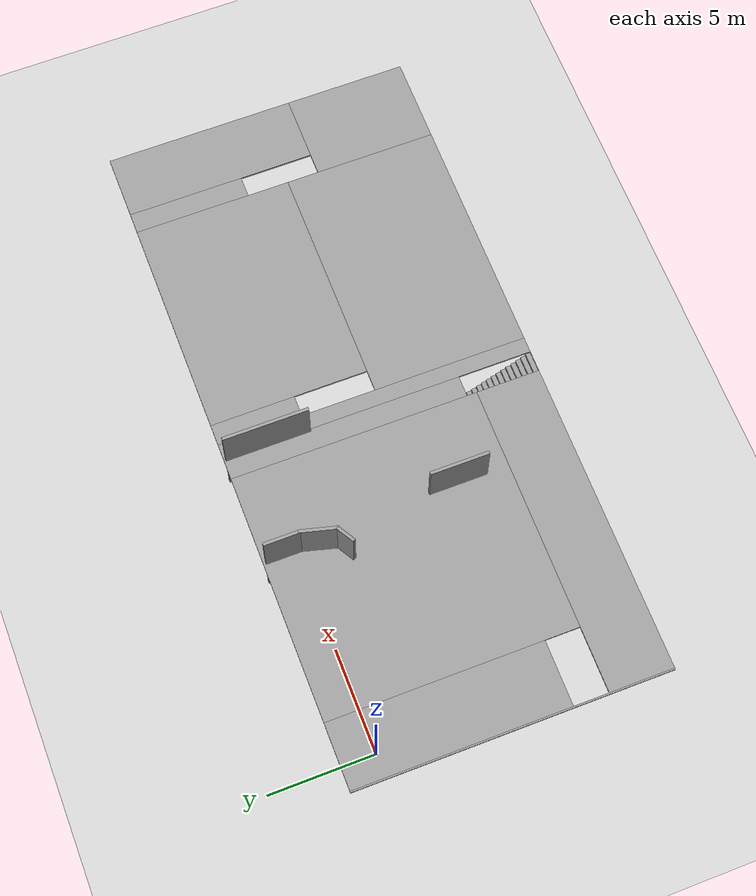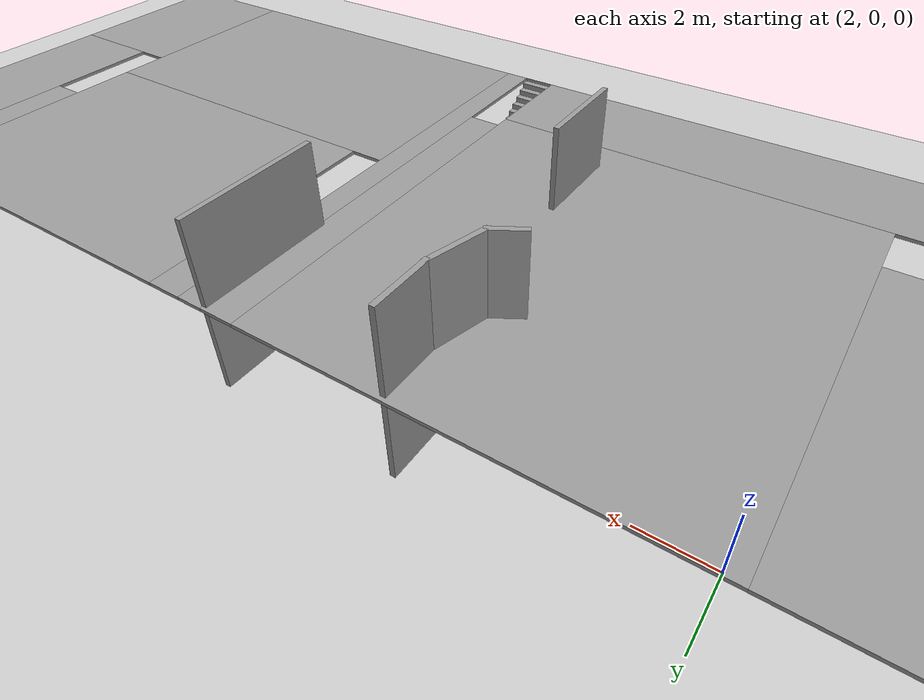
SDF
<sdf version="1.7">
 <world name="default">
  <model name="ground_plane">
   <static>1</static>
   <link name="link">
    <collision name="collision">
     <geometry><plane><normal>0 0 1</normal><size>100 100</size></plane></geometry>
     <surface><friction><ode><mu>100</mu><mu2>50</mu2></ode></friction></surface>
    </collision>
    <visual name="visual">
     <cast_shadows>0</cast_shadows>
     <geometry><plane><normal>0 0 1</normal><size>100 100</size></plane></geometry>
     <material>
      <script><uri>file://media/materials/scripts/gazebo.material</uri><name>Gazebo/Grey</name></script>
     </material>
    </visual>
   </link>
  </model>
  <model name="room_with_stairs">
   <pose>14.4299 -5.56754 0 0 -0 0</pose>
   <link name="Floor_0">
    <pose>-1e-06 0 2.5 0 -0 0</pose>
    <visual name="Floor_0_Visual_0">
     <pose>-16.1009 0 0.05 0 -0 0</pose>
     <geometry><box><size>0.075725 14.75 0.1</size></box></geometry>
     <material>
      <script><uri>file://media/materials/scripts/gazebo.material</uri><name>Gazebo/Grey</name></script>
      <ambient>1 1 1 1</ambient>
     </material>
     <meta><layer>1</layer></meta>
    </visual>
    <collision name="Floor_0_Collision_0">
     <geometry><box><size>0.075725 14.75 0.1</size></box></geometry>
     <pose>-16.1009 0 0.05 0 -0 0</pose>
    </collision>
    <visual name="Floor_0_Visual_1">
     <pose>0.183693 0 0.05 0 -0 0</pose>
     <geometry><box><size>0.743302 14.75 0.1</size></box></geometry>
     <material>
      <script><uri>file://media/materials/scripts/gazebo.material</uri><name>Gazebo/Grey</name></script>
      <ambient>1 1 1 1</ambient>
     </material>
     <meta><layer>1</layer></meta>
    </visual>
    <collision name="Floor_0_Collision_1">
     <geometry><box><size>0.743302 14.75 0.1</size></box></geometry>
     <pose>0.183693 0 0.05 0 -0 0</pose>
    </collision>
    <visual name="Floor_0_Visual_2">
     <pose>-8.62548 -5.85906 0.05 0 -0 0</pose>
     <geometry><box><size>14.875 3.03188 0.1</size></box></geometry>
     <material>
      <script><uri>file://media/materials/scripts/gazebo.material</uri><name>Gazebo/Grey</name></script>
      <ambient>1 1 1 1</ambient>
     </material>
     <meta><layer>1</layer></meta>
    </visual>
    <collision name="Floor_0_Collision_2">
     <geometry><box><size>14.875 3.03188 0.1</size></box></geometry>
     <pose>-8.62548 -5.85906 0.05 0 -0 0</pose>
    </collision>
    <visual name="Floor_0_Visual_3">
     <pose>6.30013 -3.74051 0.05 0 -0 0</pose>
     <geometry><box><size>11.4896 7.26898 0.1</size></box></geometry>
     <material>
      <script><uri>file://media/materials/scripts/gazebo.material</uri><name>Gazebo/Grey</name></script>
      <ambient>1 1 1 1</ambient>
     </material>
     <meta><layer>1</layer></meta>
    </visual>
    <collision name="Floor_0_Collision_3">
     <geometry><box><size>11.4896 7.26898 0.1</size></box></geometry>
     <pose>6.30013 -3.74051 0.05 0 -0 0</pose>
    </collision>
    <visual name="Floor_0_Visual_4">
     <pose>-0.687958 -7.37454 0.05 0 -0 0</pose>
     <geometry><box><size>1 0.000917 0.1</size></box></geometry>
     <material>
      <script><uri>file://media/materials/scripts/gazebo.material</uri><name>Gazebo/Grey</name></script>
      <ambient>1 1 1 1</ambient>
     </material>
     <meta><layer>1</layer></meta>
    </visual>
    <collision name="Floor_0_Collision_4">
     <geometry><box><size>1 0.000917 0.1</size></box></geometry>
     <pose>-0.687958 -7.37454 0.05 0 -0 0</pose>
    </collision>
    <visual name="Floor_0_Visual_5">
     <pose>14.0918 -4.49895 0.05 0 -0 0</pose>
     <geometry><box><size>4.09381 5.7521 0.1</size></box></geometry>
     <material>
      <script><uri>file://media/materials/scripts/gazebo.material</uri><name>Gazebo/Grey</name></script>
      <ambient>1 1 1 1</ambient>
     </material>
     <meta><layer>1</layer></meta>
    </visual>
    <collision name="Floor_0_Collision_5">
     <geometry><box><size>4.09381 5.7521 0.1</size></box></geometry>
     <pose>14.0918 -4.49895 0.05 0 -0 0</pose>
    </collision>
    <visual name="Floor_0_Visual_6">
     <pose>-7.07815 1.51594 0.05 0 -0 0</pose>
     <geometry><box><size>11.7804 11.7181 0.1</size></box></geometry>
     <material>
      <script><uri>file://media/materials/scripts/gazebo.material</uri><name>Gazebo/Grey</name></script>
      <ambient>1 1 1 1</ambient>
     </material>
     <meta><layer>1</layer></meta>
    </visual>
    <collision name="Floor_0_Collision_6">
     <geometry><box><size>11.7804 11.7181 0.1</size></box></geometry>
     <pose>-7.07815 1.51594 0.05 0 -0 0</pose>
    </collision>
    <visual name="Floor_0_Visual_7">
     <pose>-0.687958 1.75046 0.05 0 -0 0</pose>
     <geometry><box><size>1 11.2491 0.1</size></box></geometry>
     <material>
      <script><uri>file://media/materials/scripts/gazebo.material</uri><name>Gazebo/Grey</name></script>
      <ambient>1 1 1 1</ambient>
     </material>
     <meta><layer>1</layer></meta>
    </visual>
    <collision name="Floor_0_Collision_7">
     <geometry><box><size>1 11.2491 0.1</size></box></geometry>
     <pose>-0.687958 1.75046 0.05 0 -0 0</pose>
    </collision>
    <visual name="Floor_0_Visual_8">
     <pose>-14.5157 2.33638 0.05 0 -0 0</pose>
     <geometry><box><size>3.09467 10.0772 0.1</size></box></geometry>
     <material>
      <script><uri>file://media/materials/scripts/gazebo.material</uri><name>Gazebo/Grey</name></script>
      <ambient>1 1 1 1</ambient>
     </material>
     <meta><layer>1</layer></meta>
    </visual>
    <collision name="Floor_0_Collision_8">
     <geometry><box><size>3.09467 10.0772 0.1</size></box></geometry>
     <pose>-14.5157 2.33638 0.05 0 -0 0</pose>
    </collision>
    <visual name="Floor_0_Visual_9">
     <pose>14.5918 2.87605 0.05 0 -0 0</pose>
     <geometry><box><size>3.09381 8.9979 0.1</size></box></geometry>
     <material>
      <script><uri>file://media/materials/scripts/gazebo.material</uri><name>Gazebo/Grey</name></script>
      <ambient>1 1 1 1</ambient>
     </material>
     <meta><layer>1</layer></meta>
    </visual>
    <collision name="Floor_0_Collision_9">
     <geometry><box><size>3.09381 8.9979 0.1</size></box></geometry>
     <pose>14.5918 2.87605 0.05 0 -0 0</pose>
    </collision>
    <visual name="Floor_0_Visual_10">
     <pose>6.80013 3.63449 0.05 0 -0 0</pose>
     <geometry><box><size>10.4896 7.48102 0.1</size></box></geometry>
     <material>
      <script><uri>file://media/materials/scripts/gazebo.material</uri><name>Gazebo/Grey</name></script>
      <ambient>1 1 1 1</ambient>
     </material>
     <meta><layer>1</layer></meta>
    </visual>
    <collision name="Floor_0_Collision_10">
     <geometry><box><size>10.4896 7.48102 0.1</size></box></geometry>
     <pose>6.80013 3.63449 0.05 0 -0 0</pose>
    </collision>
    <visual name="Floor_0_Visual_11">
     <pose>12.5449 4.62605 0.05 0 -0 0</pose>
     <geometry><box><size>1 5.4979 0.1</size></box></geometry>
     <material>
      <script><uri>file://media/materials/scripts/gazebo.material</uri><name>Gazebo/Grey</name></script>
      <ambient>1 1 1 1</ambient>
     </material>
     <meta><layer>1</layer></meta>
    </visual>
    <collision name="Floor_0_Collision_11">
     <geometry><box><size>1 5.4979 0.1</size></box></geometry>
     <pose>12.5449 4.62605 0.05 0 -0 0</pose>
    </collision>
    <visual name="Floor_0_Visual_12">
     <pose>1.05534 5.38449 0.05 0 -0 0</pose>
     <geometry><box><size>1 3.98102 0.1</size></box></geometry>
     <material>
      <script><uri>file://media/materials/scripts/gazebo.material</uri><name>Gazebo/Grey</name></script>
      <ambient>1 1 1 1</ambient>
     </material>
     <meta><layer>1</layer></meta>
    </visual>
    <collision name="Floor_0_Collision_12">
     <geometry><box><size>1 3.98102 0.1</size></box></geometry>
     <pose>1.05534 5.38449 0.05 0 -0 0</pose>
    </collision>
   </link>
   <link name="Stairs_0">
    <visual name="Stairs_0_Visual_0">
     <pose>-0.687958 -3.99075 0.083333 0 -0 0</pose>
     <geometry><box><size>1 0.233333 0.166667</size></box></geometry>
     <material>
      <script><uri>file://media/materials/scripts/gazebo.material</uri><name>Gazebo/Grey</name></script>
      <ambient>1 1 1 1</ambient>
     </material>
     <meta><layer>0</layer></meta>
    </visual>
    <collision name="Stairs_0_Collision_0">
     <geometry><box><size>1 0.233333 0.166667</size></box></geometry>
     <pose>-0.687958 -3.99075 0.083333 0 -0 0</pose>
    </collision>
    <visual name="Stairs_0_Visual_1">
     <pose>-0.687958 -4.22408 0.25 0 -0 0</pose>
     <geometry><box><size>1 0.233333 0.166667</size></box></geometry>
     <material>
      <script><uri>file://media/materials/scripts/gazebo.material</uri><name>Gazebo/Grey</name></script>
      <ambient>1 1 1 1</ambient>
     </material>
     <meta><layer>0</layer></meta>
    </visual>
    <collision name="Stairs_0_Collision_1">
     <geometry><box><size>1 0.233333 0.166667</size></box></geometry>
     <pose>-0.687958 -4.22408 0.25 0 -0 0</pose>
    </collision>
    <visual name="Stairs_0_Visual_2">
     <pose>-0.687958 -4.45742 0.416667 0 -0 0</pose>
     <geometry><box><size>1 0.233333 0.166667</size></box></geometry>
     <material>
      <script><uri>file://media/materials/scripts/gazebo.material</uri><name>Gazebo/Grey</name></script>
      <ambient>1 1 1 1</ambient>
     </material>
     <meta><layer>0</layer></meta>
    </visual>
    <collision name="Stairs_0_Collision_2">
     <geometry><box><size>1 0.233333 0.166667</size></box></geometry>
     <pose>-0.687958 -4.45742 0.416667 0 -0 0</pose>
    </collision>
    <visual name="Stairs_0_Visual_3">
     <pose>-0.687958 -4.69075 0.583333 0 -0 0</pose>
     <geometry><box><size>1 0.233333 0.166667</size></box></geometry>
     <material>
      <script><uri>file://media/materials/scripts/gazebo.material</uri><name>Gazebo/Grey</name></script>
      <ambient>1 1 1 1</ambient>
     </material>
     <meta><layer>0</layer></meta>
    </visual>
    <collision name="Stairs_0_Collision_3">
     <geometry><box><size>1 0.233333 0.166667</size></box></geometry>
     <pose>-0.687958 -4.69075 0.583333 0 -0 0</pose>
    </collision>
    <visual name="Stairs_0_Visual_4">
     <pose>-0.687958 -4.92408 0.75 0 -0 0</pose>
     <geometry><box><size>1 0.233333 0.166667</size></box></geometry>
     <material>
      <script><uri>file://media/materials/scripts/gazebo.material</uri><name>Gazebo/Grey</name></script>
      <ambient>1 1 1 1</ambient>
     </material>
     <meta><layer>0</layer></meta>
    </visual>
    <collision name="Stairs_0_Collision_4">
     <geometry><box><size>1 0.233333 0.166667</size></box></geometry>
     <pose>-0.687958 -4.92408 0.75 0 -0 0</pose>
    </collision>
    <visual name="Stairs_0_Visual_5">
     <pose>-0.687958 -5.15742 0.916667 0 -0 0</pose>
     <geometry><box><size>1 0.233333 0.166667</size></box></geometry>
     <material>
      <script><uri>file://media/materials/scripts/gazebo.material</uri><name>Gazebo/Grey</name></script>
      <ambient>1 1 1 1</ambient>
     </material>
     <meta><layer>0</layer></meta>
    </visual>
    <collision name="Stairs_0_Collision_5">
     <geometry><box><size>1 0.233333 0.166667</size></box></geometry>
     <pose>-0.687958 -5.15742 0.916667 0 -0 0</pose>
    </collision>
    <visual name="Stairs_0_Visual_6">
     <pose>-0.687958 -5.39075 1.08333 0 -0 0</pose>
     <geometry><box><size>1 0.233333 0.166667</size></box></geometry>
     <material>
      <script><uri>file://media/materials/scripts/gazebo.material</uri><name>Gazebo/Grey</name></script>
      <ambient>1 1 1 1</ambient>
     </material>
     <meta><layer>0</layer></meta>
    </visual>
    <collision name="Stairs_0_Collision_6">
     <geometry><box><size>1 0.233333 0.166667</size></box></geometry>
     <pose>-0.687958 -5.39075 1.08333 0 -0 0</pose>
    </collision>
    <visual name="Stairs_0_Visual_7">
     <pose>-0.687958 -5.62408 1.25 0 -0 0</pose>
     <geometry><box><size>1 0.233333 0.166667</size></box></geometry>
     <material>
      <script><uri>file://media/materials/scripts/gazebo.material</uri><name>Gazebo/Grey</name></script>
      <ambient>1 1 1 1</ambient>
     </material>
     <meta><layer>0</layer></meta>
    </visual>
    <collision name="Stairs_0_Collision_7">
     <geometry><box><size>1 0.233333 0.166667</size></box></geometry>
     <pose>-0.687958 -5.62408 1.25 0 -0 0</pose>
    </collision>
    <visual name="Stairs_0_Visual_8">
     <pose>-0.687958 -5.85742 1.41667 0 -0 0</pose>
     <geometry><box><size>1 0.233333 0.166667</size></box></geometry>
     <material>
      <script><uri>file://media/materials/scripts/gazebo.material</uri><name>Gazebo/Grey</name></script>
      <ambient>1 1 1 1</ambient>
     </material>
     <meta><layer>0</layer></meta>
    </visual>
    <collision name="Stairs_0_Collision_8">
     <geometry><box><size>1 0.233333 0.166667</size></box></geometry>
     <pose>-0.687958 -5.85742 1.41667 0 -0 0</pose>
    </collision>
    <visual name="Stairs_0_Visual_9">
     <pose>-0.687958 -6.09075 1.58333 0 -0 0</pose>
     <geometry><box><size>1 0.233333 0.166667</size></box></geometry>
     <material>
      <script><uri>file://media/materials/scripts/gazebo.material</uri><name>Gazebo/Grey</name></script>
      <ambient>1 1 1 1</ambient>
     </material>
     <meta><layer>0</layer></meta>
    </visual>
    <collision name="Stairs_0_Collision_9">
     <geometry><box><size>1 0.233333 0.166667</size></box></geometry>
     <pose>-0.687958 -6.09075 1.58333 0 -0 0</pose>
    </collision>
    <visual name="Stairs_0_Visual_10">
     <pose>-0.687958 -6.32408 1.75 0 -0 0</pose>
     <geometry><box><size>1 0.233333 0.166667</size></box></geometry>
     <material>
      <script><uri>file://media/materials/scripts/gazebo.material</uri><name>Gazebo/Grey</name></script>
      <ambient>1 1 1 1</ambient>
     </material>
     <meta><layer>0</layer></meta>
    </visual>
    <collision name="Stairs_0_Collision_10">
     <geometry><box><size>1 0.233333 0.166667</size></box></geometry>
     <pose>-0.687958 -6.32408 1.75 0 -0 0</pose>
    </collision>
    <visual name="Stairs_0_Visual_11">
     <pose>-0.687958 -6.55742 1.91667 0 -0 0</pose>
     <geometry><box><size>1 0.233333 0.166667</size></box></geometry>
     <material>
      <script><uri>file://media/materials/scripts/gazebo.material</uri><name>Gazebo/Grey</name></script>
      <ambient>1 1 1 1</ambient>
     </material>
     <meta><layer>0</layer></meta>
    </visual>
    <collision name="Stairs_0_Collision_11">
     <geometry><box><size>1 0.233333 0.166667</size></box></geometry>
     <pose>-0.687958 -6.55742 1.91667 0 -0 0</pose>
    </collision>
    <visual name="Stairs_0_Visual_12">
     <pose>-0.687958 -6.79075 2.08333 0 -0 0</pose>
     <geometry><box><size>1 0.233333 0.166667</size></box></geometry>
     <material>
      <script><uri>file://media/materials/scripts/gazebo.material</uri><name>Gazebo/Grey</name></script>
      <ambient>1 1 1 1</ambient>
     </material>
     <meta><layer>0</layer></meta>
    </visual>
    <collision name="Stairs_0_Collision_12">
     <geometry><box><size>1 0.233333 0.166667</size></box></geometry>
     <pose>-0.687958 -6.79075 2.08333 0 -0 0</pose>
    </collision>
    <visual name="Stairs_0_Visual_13">
     <pose>-0.687958 -7.02408 2.25 0 -0 0</pose>
     <geometry><box><size>1 0.233333 0.166667</size></box></geometry>
     <material>
      <script><uri>file://media/materials/scripts/gazebo.material</uri><name>Gazebo/Grey</name></script>
      <ambient>1 1 1 1</ambient>
     </material>
     <meta><layer>0</layer></meta>
    </visual>
    <collision name="Stairs_0_Collision_13">
     <geometry><box><size>1 0.233333 0.166667</size></box></geometry>
     <pose>-0.687958 -7.02408 2.25 0 -0 0</pose>
    </collision>
    <visual name="Stairs_0_Visual_14">
     <pose>-0.687958 -7.25742 2.41667 0 -0 0</pose>
     <geometry><box><size>1 0.233333 0.166667</size></box></geometry>
     <material>
      <script><uri>file://media/materials/scripts/gazebo.material</uri><name>Gazebo/Grey</name></script>
      <ambient>1 1 1 1</ambient>
     </material>
     <meta><layer>0</layer></meta>
    </visual>
    <collision name="Stairs_0_Collision_14">
     <geometry><box><size>1 0.233333 0.166667</size></box></geometry>
     <pose>-0.687958 -7.25742 2.41667 0 -0 0</pose>
    </collision>
   </link>
   <link name="Wall_14">
    <collision name="Wall_14_Collision">
     <geometry><box><size>1 0.15 2.5</size></box></geometry>
     <pose>0 0 1.25 0 -0 0</pose>
    </collision>
    <visual name="Wall_14_Visual">
     <pose>0 0 1.25 0 -0 0</pose>
     <geometry><box><size>1 0.15 2.5</size></box></geometry>
     <material>
      <script><uri>file://media/materials/scripts/gazebo.material</uri><name>Gazebo/Grey</name></script>
      <ambient>1 1 1 1</ambient>
     </material>
     <meta><layer>0</layer></meta>
    </visual>
    <pose>-6.20563 3.82847 0 0 -0 0.523599</pose>
   </link>
   <link name="Wall_15">
    <collision name="Wall_15_Collision">
     <geometry><box><size>1.75 0.15 2.5</size></box></geometry>
     <pose>0 0 1.25 0 -0 0</pose>
    </collision>
    <visual name="Wall_15_Visual">
     <pose>0 0 1.25 0 -0 0</pose>
     <geometry><box><size>1.75 0.15 2.5</size></box></geometry>
     <material>
      <script><uri>file://media/materials/scripts/gazebo.material</uri><name>Gazebo/Grey</name></script>
      <ambient>1 1 1 1</ambient>
     </material>
     <meta><layer>0</layer></meta>
    </visual>
    <pose>-5.63051 4.81371 0 0 -0 1.309</pose>
   </link>
   <link name="Wall_16">
    <collision name="Wall_16_Collision">
     <geometry><box><size>1.75 0.15 2.5</size></box></geometry>
     <pose>0 0 1.25 0 -0 0</pose>
    </collision>
    <visual name="Wall_16_Visual">
     <pose>0 0 1.25 0 -0 0</pose>
     <geometry><box><size>1.75 0.15 2.5</size></box></geometry>
     <material>
      <script><uri>file://media/materials/scripts/gazebo.material</uri><name>Gazebo/Grey</name></script>
      <ambient>1 1 1 1</ambient>
     </material>
     <meta><layer>0</layer></meta>
    </visual>
    <pose>-5.42345 6.38645 0 0 -0 1.5708</pose>
   </link>
   <link name="Wall_25">
    <collision name="Wall_25_Collision">
     <geometry><box><size>4 0.15 2.5</size></box></geometry>
     <pose>0 0 1.25 0 -0 0</pose>
    </collision>
    <visual name="Wall_25_Visual">
     <pose>0 0 1.25 0 -0 0</pose>
     <geometry><box><size>4 0.15 2.5</size></box></geometry>
     <material>
      <script><uri>file://media/materials/scripts/gazebo.material</uri><name>Gazebo/Grey</name></script>
      <ambient>1 1 1 1</ambient>
     </material>
     <meta><layer>0</layer></meta>
    </visual>
    <pose>-0.236911 5.2884 0 0 -0 -1.5708</pose>
   </link>
   <link name="Wall_30">
    <collision name="Wall_30_Collision">
     <geometry><box><size>2.75 0.15 2.5</size></box></geometry>
     <pose>0 0 1.25 0 -0 0</pose>
    </collision>
    <visual name="Wall_30_Visual">
     <pose>0 0 1.25 0 -0 0</pose>
     <geometry><box><size>2.75 0.15 2.5</size></box></geometry>
     <material>
      <script><uri>file://media/materials/scripts/gazebo.material</uri><name>Gazebo/Grey</name></script>
      <ambient>1 1 1 1</ambient>
     </material>
     <meta><layer>0</layer></meta>
    </visual>
    <pose>-4.95287 -1.92017 0 0 -0 -1.5708</pose>
   </link>
   <link name="Wall_51">
    <collision name="Wall_51_Collision">
     <geometry><box><size>1 0.15 2.5</size></box></geometry>
     <pose>0 0 1.25 0 -0 0</pose>
    </collision>
    <visual name="Wall_51_Visual">
     <pose>0 0 1.25 0 -0 0</pose>
     <geometry><box><size>1 0.15 2.5</size></box></geometry>
     <material>
      <script><uri>file://media/materials/scripts/gazebo.material</uri><name>Gazebo/Grey</name></script>
      <ambient>1 1 1 1</ambient>
     </material>
     <meta><layer>1</layer></meta>
    </visual>
    <pose>-6.20563 3.82847 2.5 0 -0 0.523599</pose>
   </link>
   <link name="Wall_52">
    <collision name="Wall_52_Collision">
     <geometry><box><size>1.75 0.15 2.5</size></box></geometry>
     <pose>0 0 1.25 0 -0 0</pose>
    </collision>
    <visual name="Wall_52_Visual">
     <pose>0 0 1.25 0 -0 0</pose>
     <geometry><box><size>1.75 0.15 2.5</size></box></geometry>
     <material>
      <script><uri>file://media/materials/scripts/gazebo.material</uri><name>Gazebo/Grey</name></script>
      <ambient>1 1 1 1</ambient>
     </material>
     <meta><layer>1</layer></meta>
    </visual>
    <pose>-5.63051 4.81371 2.5 0 -0 1.309</pose>
   </link>
   <link name="Wall_53">
    <collision name="Wall_53_Collision">
     <geometry><box><size>1.75 0.15 2.5</size></box></geometry>
     <pose>0 0 1.25 0 -0 0</pose>
    </collision>
    <visual name="Wall_53_Visual">
     <pose>0 0 1.25 0 -0 0</pose>
     <geometry><box><size>1.75 0.15 2.5</size></box></geometry>
     <material>
      <script><uri>file://media/materials/scripts/gazebo.material</uri><name>Gazebo/Grey</name></script>
      <ambient>1 1 1 1</ambient>
     </material>
     <meta><layer>1</layer></meta>
    </visual>
    <pose>-5.42345 6.38645 2.5 0 -0 1.5708</pose>
   </link>
   <link name="Wall_59">
    <collision name="Wall_59_Collision">
     <geometry><box><size>4 0.15 2.5</size></box></geometry>
     <pose>0 0 1.25 0 -0 0</pose>
    </collision>
    <visual name="Wall_59_Visual">
     <pose>0 0 1.25 0 -0 0</pose>
     <geometry><box><size>4 0.15 2.5</size></box></geometry>
     <material>
      <script><uri>file://media/materials/scripts/gazebo.material</uri><name>Gazebo/Grey</name></script>
      <ambient>1 1 1 1</ambient>
     </material>
     <meta><layer>1</layer></meta>
    </visual>
    <pose>-0.23691 5.2884 2.5 0 -0 -1.5708</pose>
   </link>
   <link name="Wall_63">
    <collision name="Wall_63_Collision">
     <geometry><box><size>2.75 0.15 2.5</size></box></geometry>
     <pose>0 0 1.25 0 -0 0</pose>
    </collision>
    <visual name="Wall_63_Visual">
     <pose>0 0 1.25 0 -0 0</pose>
     <geometry><box><size>2.75 0.15 2.5</size></box></geometry>
     <material>
      <script><uri>file://media/materials/scripts/gazebo.material</uri><name>Gazebo/Grey</name></script>
      <ambient>1 1 1 1</ambient>
     </material>
     <meta><layer>1</layer></meta>
    </visual>
    <pose>-4.95287 -1.92017 2.5 0 -0 -1.5708</pose>
   </link>
   <static>1</static>
  </model>
 </world>
</sdf>
